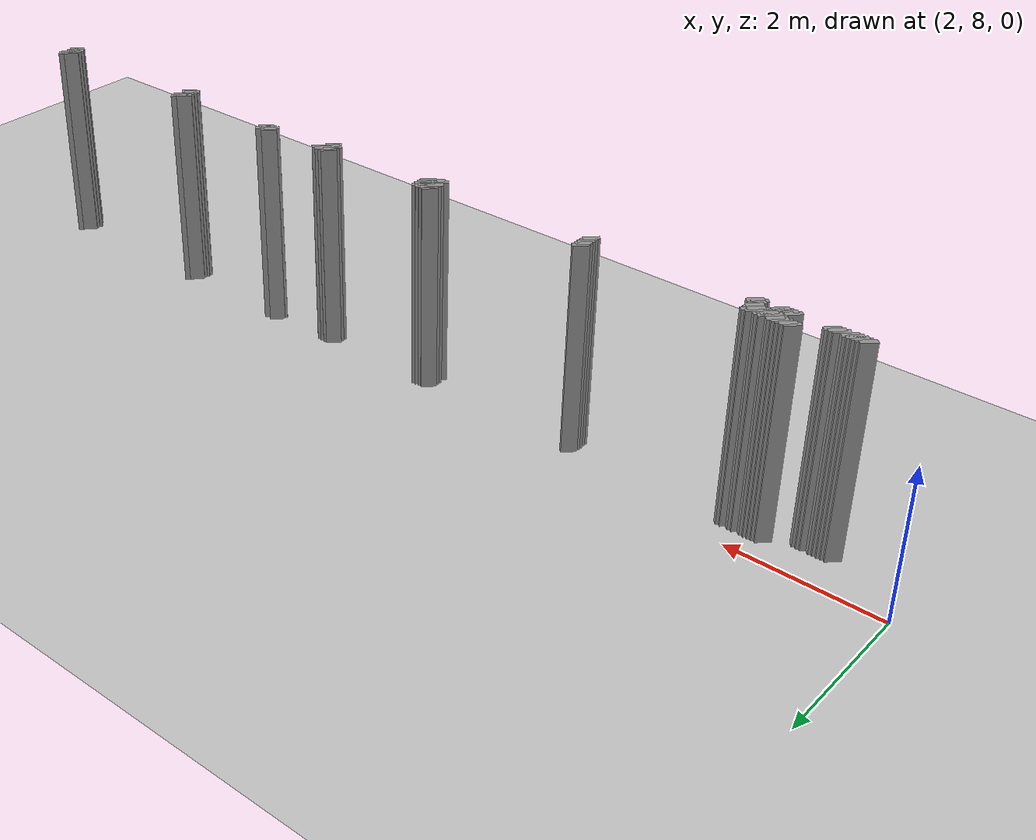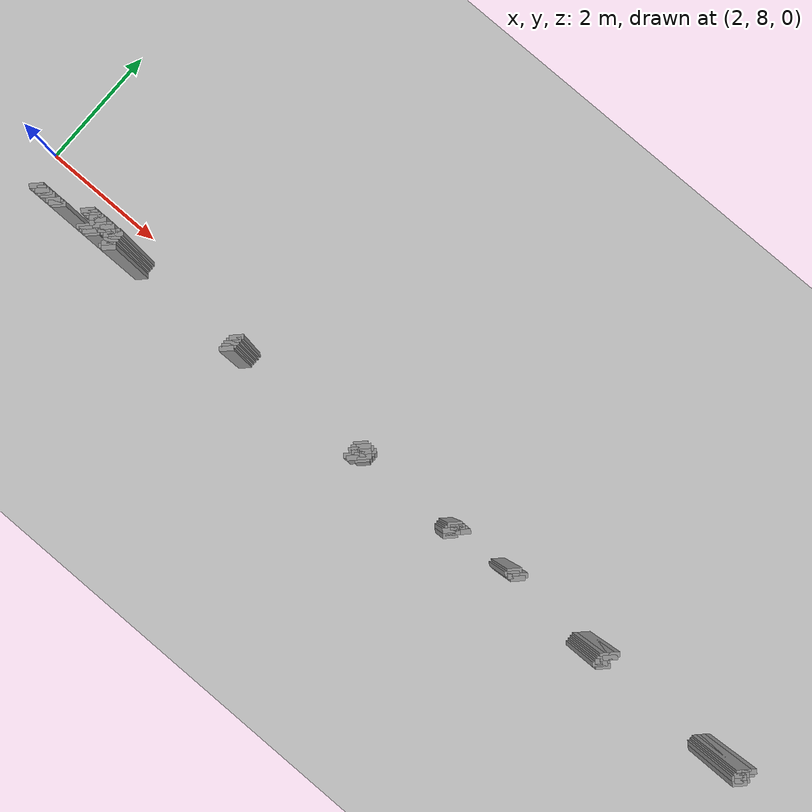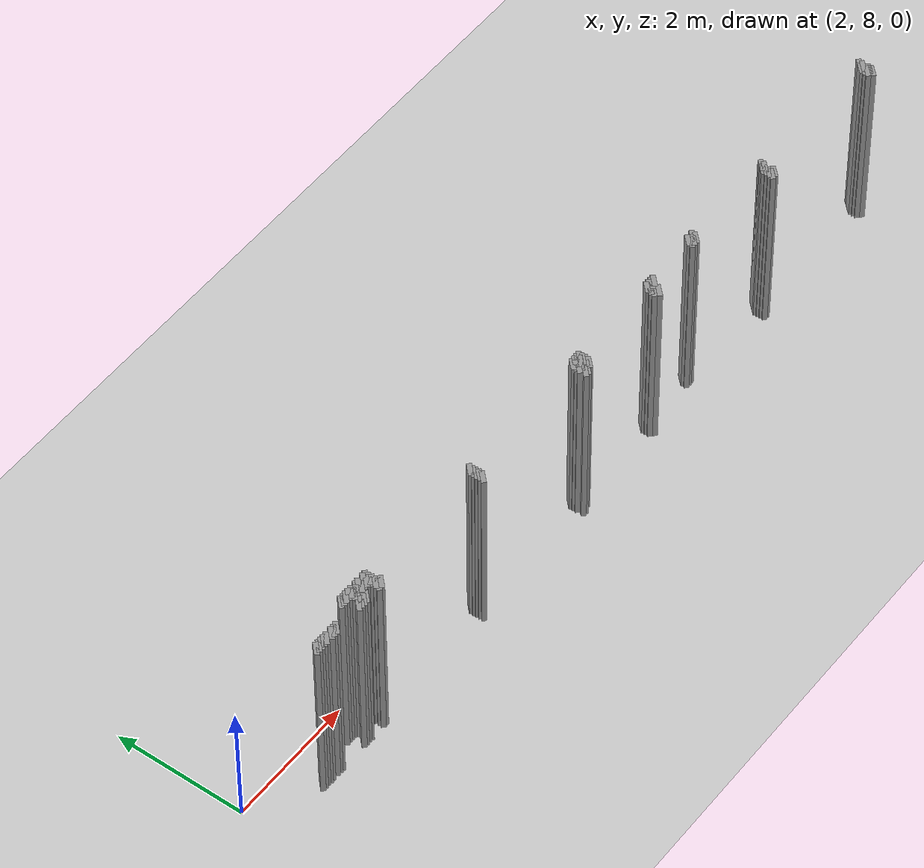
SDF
<sdf version="1.5">
 <world name="default">
  <include><uri>model://ground_plane</uri></include>
  <include><uri>model://sun</uri></include>
  <model name="grey_wall_1400">
   <static>1</static>
   <link name="link">
    <pose>11.2 7.7  1.4 0 0 -0.785398163397</pose>
    <collision name="collision"><geometry><box><size>0.0707106781187 .2  2.8</size></box></geometry></collision>
    <visual name="visual">
     <cast_shadows>0</cast_shadows>
     <geometry><box><size>0.0707106781187 .2  2.8</size></box></geometry>
     <material>
      <script>
       <uri>model://grey_wall/materials/scripts</uri>
       <uri>model://grey_wall/materials/textures</uri>
       <name>vrc/grey_wall</name>
      </script>
     </material>
    </visual>
   </link>
  </model>
  <model name="grey_wall_1401">
   <static>1</static>
   <link name="link">
    <pose>11.3 7.7  1.4 0 0 -0.785398163397</pose>
    <collision name="collision"><geometry><box><size>0.0707106781187 .2  2.8</size></box></geometry></collision>
    <visual name="visual">
     <cast_shadows>0</cast_shadows>
     <geometry><box><size>0.0707106781187 .2  2.8</size></box></geometry>
     <material>
      <script>
       <uri>model://grey_wall/materials/scripts</uri>
       <uri>model://grey_wall/materials/textures</uri>
       <name>vrc/grey_wall</name>
      </script>
     </material>
    </visual>
   </link>
  </model>
  <model name="grey_wall_1402">
   <static>1</static>
   <link name="link">
    <pose>12.9 7.7  1.4 0 0 -0.785398163397</pose>
    <collision name="collision"><geometry><box><size>0.0707106781187 .2  2.8</size></box></geometry></collision>
    <visual name="visual">
     <cast_shadows>0</cast_shadows>
     <geometry><box><size>0.0707106781187 .2  2.8</size></box></geometry>
     <material>
      <script>
       <uri>model://grey_wall/materials/scripts</uri>
       <uri>model://grey_wall/materials/textures</uri>
       <name>vrc/grey_wall</name>
      </script>
     </material>
    </visual>
   </link>
  </model>
  <model name="grey_wall_1403">
   <static>1</static>
   <link name="link">
    <pose>15.25 7.7  1.4 0 0 -0.785398163397</pose>
    <collision name="collision"><geometry><box><size>0.0707106781187 .2  2.8</size></box></geometry></collision>
    <visual name="visual">
     <cast_shadows>0</cast_shadows>
     <geometry><box><size>0.0707106781187 .2  2.8</size></box></geometry>
     <material>
      <script>
       <uri>model://grey_wall/materials/scripts</uri>
       <uri>model://grey_wall/materials/textures</uri>
       <name>vrc/grey_wall</name>
      </script>
     </material>
    </visual>
   </link>
  </model>
  <model name="grey_wall_1404">
   <static>1</static>
   <link name="link">
    <pose>3.7 7.65  1.4 0 0 -0.785398163397</pose>
    <collision name="collision"><geometry><box><size>0.0707106781187 .2  2.8</size></box></geometry></collision>
    <visual name="visual">
     <cast_shadows>0</cast_shadows>
     <geometry><box><size>0.0707106781187 .2  2.8</size></box></geometry>
     <material>
      <script>
       <uri>model://grey_wall/materials/scripts</uri>
       <uri>model://grey_wall/materials/textures</uri>
       <name>vrc/grey_wall</name>
      </script>
     </material>
    </visual>
   </link>
  </model>
  <model name="grey_wall_1405">
   <static>1</static>
   <link name="link">
    <pose>3.75 7.65  1.4 0 0 -0.785398163397</pose>
    <collision name="collision"><geometry><box><size>0.0707106781187 .2  2.8</size></box></geometry></collision>
    <visual name="visual">
     <cast_shadows>0</cast_shadows>
     <geometry><box><size>0.0707106781187 .2  2.8</size></box></geometry>
     <material>
      <script>
       <uri>model://grey_wall/materials/scripts</uri>
       <uri>model://grey_wall/materials/textures</uri>
       <name>vrc/grey_wall</name>
      </script>
     </material>
    </visual>
   </link>
  </model>
  <model name="grey_wall_1406">
   <static>1</static>
   <link name="link">
    <pose>3.8 7.65  1.4 0 0 -0.785398163397</pose>
    <collision name="collision"><geometry><box><size>0.0707106781187 .2  2.8</size></box></geometry></collision>
    <visual name="visual">
     <cast_shadows>0</cast_shadows>
     <geometry><box><size>0.0707106781187 .2  2.8</size></box></geometry>
     <material>
      <script>
       <uri>model://grey_wall/materials/scripts</uri>
       <uri>model://grey_wall/materials/textures</uri>
       <name>vrc/grey_wall</name>
      </script>
     </material>
    </visual>
   </link>
  </model>
  <model name="grey_wall_1407">
   <static>1</static>
   <link name="link">
    <pose>3.85 7.65  1.4 0 0 -0.785398163397</pose>
    <collision name="collision"><geometry><box><size>0.0707106781187 .2  2.8</size></box></geometry></collision>
    <visual name="visual">
     <cast_shadows>0</cast_shadows>
     <geometry><box><size>0.0707106781187 .2  2.8</size></box></geometry>
     <material>
      <script>
       <uri>model://grey_wall/materials/scripts</uri>
       <uri>model://grey_wall/materials/textures</uri>
       <name>vrc/grey_wall</name>
      </script>
     </material>
    </visual>
   </link>
  </model>
  <model name="grey_wall_1408">
   <static>1</static>
   <link name="link">
    <pose>3.9 7.65  1.4 0 0 -0.785398163397</pose>
    <collision name="collision"><geometry><box><size>0.0707106781187 .2  2.8</size></box></geometry></collision>
    <visual name="visual">
     <cast_shadows>0</cast_shadows>
     <geometry><box><size>0.0707106781187 .2  2.8</size></box></geometry>
     <material>
      <script>
       <uri>model://grey_wall/materials/scripts</uri>
       <uri>model://grey_wall/materials/textures</uri>
       <name>vrc/grey_wall</name>
      </script>
     </material>
    </visual>
   </link>
  </model>
  <model name="grey_wall_1409">
   <static>1</static>
   <link name="link">
    <pose>4.0 7.65  1.4 0 0 -0.785398163397</pose>
    <collision name="collision"><geometry><box><size>0.0707106781187 .2  2.8</size></box></geometry></collision>
    <visual name="visual">
     <cast_shadows>0</cast_shadows>
     <geometry><box><size>0.0707106781187 .2  2.8</size></box></geometry>
     <material>
      <script>
       <uri>model://grey_wall/materials/scripts</uri>
       <uri>model://grey_wall/materials/textures</uri>
       <name>vrc/grey_wall</name>
      </script>
     </material>
    </visual>
   </link>
  </model>
  <model name="grey_wall_1410">
   <static>1</static>
   <link name="link">
    <pose>4.05 7.65  1.4 0 0 -0.785398163397</pose>
    <collision name="collision"><geometry><box><size>0.0707106781187 .2  2.8</size></box></geometry></collision>
    <visual name="visual">
     <cast_shadows>0</cast_shadows>
     <geometry><box><size>0.0707106781187 .2  2.8</size></box></geometry>
     <material>
      <script>
       <uri>model://grey_wall/materials/scripts</uri>
       <uri>model://grey_wall/materials/textures</uri>
       <name>vrc/grey_wall</name>
      </script>
     </material>
    </visual>
   </link>
  </model>
  <model name="grey_wall_1411">
   <static>1</static>
   <link name="link">
    <pose>4.15 7.65  1.4 0 0 -0.785398163397</pose>
    <collision name="collision"><geometry><box><size>0.0707106781187 .2  2.8</size></box></geometry></collision>
    <visual name="visual">
     <cast_shadows>0</cast_shadows>
     <geometry><box><size>0.0707106781187 .2  2.8</size></box></geometry>
     <material>
      <script>
       <uri>model://grey_wall/materials/scripts</uri>
       <uri>model://grey_wall/materials/textures</uri>
       <name>vrc/grey_wall</name>
      </script>
     </material>
    </visual>
   </link>
  </model>
  <model name="grey_wall_1412">
   <static>1</static>
   <link name="link">
    <pose>4.2 7.65  1.4 0 0 -0.785398163397</pose>
    <collision name="collision"><geometry><box><size>0.0707106781187 .2  2.8</size></box></geometry></collision>
    <visual name="visual">
     <cast_shadows>0</cast_shadows>
     <geometry><box><size>0.0707106781187 .2  2.8</size></box></geometry>
     <material>
      <script>
       <uri>model://grey_wall/materials/scripts</uri>
       <uri>model://grey_wall/materials/textures</uri>
       <name>vrc/grey_wall</name>
      </script>
     </material>
    </visual>
   </link>
  </model>
  <model name="grey_wall_1413">
   <static>1</static>
   <link name="link">
    <pose>6.35 7.65  1.4 0 0 -0.785398163397</pose>
    <collision name="collision"><geometry><box><size>0.0707106781187 .2  2.8</size></box></geometry></collision>
    <visual name="visual">
     <cast_shadows>0</cast_shadows>
     <geometry><box><size>0.0707106781187 .2  2.8</size></box></geometry>
     <material>
      <script>
       <uri>model://grey_wall/materials/scripts</uri>
       <uri>model://grey_wall/materials/textures</uri>
       <name>vrc/grey_wall</name>
      </script>
     </material>
    </visual>
   </link>
  </model>
  <model name="grey_wall_1414">
   <static>1</static>
   <link name="link">
    <pose>8.55 7.65  1.4 0 0 -0.785398163397</pose>
    <collision name="collision"><geometry><box><size>0.0707106781187 .2  2.8</size></box></geometry></collision>
    <visual name="visual">
     <cast_shadows>0</cast_shadows>
     <geometry><box><size>0.0707106781187 .2  2.8</size></box></geometry>
     <material>
      <script>
       <uri>model://grey_wall/materials/scripts</uri>
       <uri>model://grey_wall/materials/textures</uri>
       <name>vrc/grey_wall</name>
      </script>
     </material>
    </visual>
   </link>
  </model>
  <model name="grey_wall_1415">
   <static>1</static>
   <link name="link">
    <pose>8.6 7.65  1.4 0 0 -0.785398163397</pose>
    <collision name="collision"><geometry><box><size>0.0707106781187 .2  2.8</size></box></geometry></collision>
    <visual name="visual">
     <cast_shadows>0</cast_shadows>
     <geometry><box><size>0.0707106781187 .2  2.8</size></box></geometry>
     <material>
      <script>
       <uri>model://grey_wall/materials/scripts</uri>
       <uri>model://grey_wall/materials/textures</uri>
       <name>vrc/grey_wall</name>
      </script>
     </material>
    </visual>
   </link>
  </model>
  <model name="grey_wall_1416">
   <static>1</static>
   <link name="link">
    <pose>8.65 7.65  1.4 0 0 -0.785398163397</pose>
    <collision name="collision"><geometry><box><size>0.0707106781187 .2  2.8</size></box></geometry></collision>
    <visual name="visual">
     <cast_shadows>0</cast_shadows>
     <geometry><box><size>0.0707106781187 .2  2.8</size></box></geometry>
     <material>
      <script>
       <uri>model://grey_wall/materials/scripts</uri>
       <uri>model://grey_wall/materials/textures</uri>
       <name>vrc/grey_wall</name>
      </script>
     </material>
    </visual>
   </link>
  </model>
  <model name="grey_wall_1417">
   <static>1</static>
   <link name="link">
    <pose>8.7 7.65  1.4 0 0 -0.785398163397</pose>
    <collision name="collision"><geometry><box><size>0.0707106781187 .2  2.8</size></box></geometry></collision>
    <visual name="visual">
     <cast_shadows>0</cast_shadows>
     <geometry><box><size>0.0707106781187 .2  2.8</size></box></geometry>
     <material>
      <script>
       <uri>model://grey_wall/materials/scripts</uri>
       <uri>model://grey_wall/materials/textures</uri>
       <name>vrc/grey_wall</name>
      </script>
     </material>
    </visual>
   </link>
  </model>
  <model name="grey_wall_1418">
   <static>1</static>
   <link name="link">
    <pose>10.2 7.65  1.4 0 0 -0.785398163397</pose>
    <collision name="collision"><geometry><box><size>0.0707106781187 .2  2.8</size></box></geometry></collision>
    <visual name="visual">
     <cast_shadows>0</cast_shadows>
     <geometry><box><size>0.0707106781187 .2  2.8</size></box></geometry>
     <material>
      <script>
       <uri>model://grey_wall/materials/scripts</uri>
       <uri>model://grey_wall/materials/textures</uri>
       <name>vrc/grey_wall</name>
      </script>
     </material>
    </visual>
   </link>
  </model>
  <model name="grey_wall_1419">
   <static>1</static>
   <link name="link">
    <pose>10.25 7.65  1.4 0 0 -0.785398163397</pose>
    <collision name="collision"><geometry><box><size>0.0707106781187 .2  2.8</size></box></geometry></collision>
    <visual name="visual">
     <cast_shadows>0</cast_shadows>
     <geometry><box><size>0.0707106781187 .2  2.8</size></box></geometry>
     <material>
      <script>
       <uri>model://grey_wall/materials/scripts</uri>
       <uri>model://grey_wall/materials/textures</uri>
       <name>vrc/grey_wall</name>
      </script>
     </material>
    </visual>
   </link>
  </model>
  <model name="grey_wall_1420">
   <static>1</static>
   <link name="link">
    <pose>10.3 7.65  1.4 0 0 -0.785398163397</pose>
    <collision name="collision"><geometry><box><size>0.0707106781187 .2  2.8</size></box></geometry></collision>
    <visual name="visual">
     <cast_shadows>0</cast_shadows>
     <geometry><box><size>0.0707106781187 .2  2.8</size></box></geometry>
     <material>
      <script>
       <uri>model://grey_wall/materials/scripts</uri>
       <uri>model://grey_wall/materials/textures</uri>
       <name>vrc/grey_wall</name>
      </script>
     </material>
    </visual>
   </link>
  </model>
  <model name="grey_wall_1421">
   <static>1</static>
   <link name="link">
    <pose>10.35 7.65  1.4 0 0 -0.785398163397</pose>
    <collision name="collision"><geometry><box><size>0.0707106781187 .2  2.8</size></box></geometry></collision>
    <visual name="visual">
     <cast_shadows>0</cast_shadows>
     <geometry><box><size>0.0707106781187 .2  2.8</size></box></geometry>
     <material>
      <script>
       <uri>model://grey_wall/materials/scripts</uri>
       <uri>model://grey_wall/materials/textures</uri>
       <name>vrc/grey_wall</name>
      </script>
     </material>
    </visual>
   </link>
  </model>
  <model name="grey_wall_1422">
   <static>1</static>
   <link name="link">
    <pose>11.2 7.65  1.4 0 0 -0.785398163397</pose>
    <collision name="collision"><geometry><box><size>0.0707106781187 .2  2.8</size></box></geometry></collision>
    <visual name="visual">
     <cast_shadows>0</cast_shadows>
     <geometry><box><size>0.0707106781187 .2  2.8</size></box></geometry>
     <material>
      <script>
       <uri>model://grey_wall/materials/scripts</uri>
       <uri>model://grey_wall/materials/textures</uri>
       <name>vrc/grey_wall</name>
      </script>
     </material>
    </visual>
   </link>
  </model>
  <model name="grey_wall_1423">
   <static>1</static>
   <link name="link">
    <pose>11.25 7.65  1.4 0 0 -0.785398163397</pose>
    <collision name="collision"><geometry><box><size>0.0707106781187 .2  2.8</size></box></geometry></collision>
    <visual name="visual">
     <cast_shadows>0</cast_shadows>
     <geometry><box><size>0.0707106781187 .2  2.8</size></box></geometry>
     <material>
      <script>
       <uri>model://grey_wall/materials/scripts</uri>
       <uri>model://grey_wall/materials/textures</uri>
       <name>vrc/grey_wall</name>
      </script>
     </material>
    </visual>
   </link>
  </model>
  <model name="grey_wall_1424">
   <static>1</static>
   <link name="link">
    <pose>11.3 7.65  1.4 0 0 -0.785398163397</pose>
    <collision name="collision"><geometry><box><size>0.0707106781187 .2  2.8</size></box></geometry></collision>
    <visual name="visual">
     <cast_shadows>0</cast_shadows>
     <geometry><box><size>0.0707106781187 .2  2.8</size></box></geometry>
     <material>
      <script>
       <uri>model://grey_wall/materials/scripts</uri>
       <uri>model://grey_wall/materials/textures</uri>
       <name>vrc/grey_wall</name>
      </script>
     </material>
    </visual>
   </link>
  </model>
  <model name="grey_wall_1425">
   <static>1</static>
   <link name="link">
    <pose>12.85 7.65  1.4 0 0 -0.785398163397</pose>
    <collision name="collision"><geometry><box><size>0.0707106781187 .2  2.8</size></box></geometry></collision>
    <visual name="visual">
     <cast_shadows>0</cast_shadows>
     <geometry><box><size>0.0707106781187 .2  2.8</size></box></geometry>
     <material>
      <script>
       <uri>model://grey_wall/materials/scripts</uri>
       <uri>model://grey_wall/materials/textures</uri>
       <name>vrc/grey_wall</name>
      </script>
     </material>
    </visual>
   </link>
  </model>
  <model name="grey_wall_1426">
   <static>1</static>
   <link name="link">
    <pose>12.9 7.65  1.4 0 0 -0.785398163397</pose>
    <collision name="collision"><geometry><box><size>0.0707106781187 .2  2.8</size></box></geometry></collision>
    <visual name="visual">
     <cast_shadows>0</cast_shadows>
     <geometry><box><size>0.0707106781187 .2  2.8</size></box></geometry>
     <material>
      <script>
       <uri>model://grey_wall/materials/scripts</uri>
       <uri>model://grey_wall/materials/textures</uri>
       <name>vrc/grey_wall</name>
      </script>
     </material>
    </visual>
   </link>
  </model>
  <model name="grey_wall_1427">
   <static>1</static>
   <link name="link">
    <pose>15.2 7.65  1.4 0 0 -0.785398163397</pose>
    <collision name="collision"><geometry><box><size>0.0707106781187 .2  2.8</size></box></geometry></collision>
    <visual name="visual">
     <cast_shadows>0</cast_shadows>
     <geometry><box><size>0.0707106781187 .2  2.8</size></box></geometry>
     <material>
      <script>
       <uri>model://grey_wall/materials/scripts</uri>
       <uri>model://grey_wall/materials/textures</uri>
       <name>vrc/grey_wall</name>
      </script>
     </material>
    </visual>
   </link>
  </model>
  <model name="grey_wall_1428">
   <static>1</static>
   <link name="link">
    <pose>15.25 7.65  1.4 0 0 -0.785398163397</pose>
    <collision name="collision"><geometry><box><size>0.0707106781187 .2  2.8</size></box></geometry></collision>
    <visual name="visual">
     <cast_shadows>0</cast_shadows>
     <geometry><box><size>0.0707106781187 .2  2.8</size></box></geometry>
     <material>
      <script>
       <uri>model://grey_wall/materials/scripts</uri>
       <uri>model://grey_wall/materials/textures</uri>
       <name>vrc/grey_wall</name>
      </script>
     </material>
    </visual>
   </link>
  </model>
  <model name="grey_wall_1429">
   <static>1</static>
   <link name="link">
    <pose>3.9 7.6  1.4 0 0 -0.785398163397</pose>
    <collision name="collision"><geometry><box><size>0.0707106781187 .2  2.8</size></box></geometry></collision>
    <visual name="visual">
     <cast_shadows>0</cast_shadows>
     <geometry><box><size>0.0707106781187 .2  2.8</size></box></geometry>
     <material>
      <script>
       <uri>model://grey_wall/materials/scripts</uri>
       <uri>model://grey_wall/materials/textures</uri>
       <name>vrc/grey_wall</name>
      </script>
     </material>
    </visual>
   </link>
  </model>
  <model name="grey_wall_1430">
   <static>1</static>
   <link name="link">
    <pose>3.95 7.6  1.4 0 0 -0.785398163397</pose>
    <collision name="collision"><geometry><box><size>0.0707106781187 .2  2.8</size></box></geometry></collision>
    <visual name="visual">
     <cast_shadows>0</cast_shadows>
     <geometry><box><size>0.0707106781187 .2  2.8</size></box></geometry>
     <material>
      <script>
       <uri>model://grey_wall/materials/scripts</uri>
       <uri>model://grey_wall/materials/textures</uri>
       <name>vrc/grey_wall</name>
      </script>
     </material>
    </visual>
   </link>
  </model>
  <model name="grey_wall_1431">
   <static>1</static>
   <link name="link">
    <pose>4.0 7.6  1.4 0 0 -0.785398163397</pose>
    <collision name="collision"><geometry><box><size>0.0707106781187 .2  2.8</size></box></geometry></collision>
    <visual name="visual">
     <cast_shadows>0</cast_shadows>
     <geometry><box><size>0.0707106781187 .2  2.8</size></box></geometry>
     <material>
      <script>
       <uri>model://grey_wall/materials/scripts</uri>
       <uri>model://grey_wall/materials/textures</uri>
       <name>vrc/grey_wall</name>
      </script>
     </material>
    </visual>
   </link>
  </model>
  <model name="grey_wall_1432">
   <static>1</static>
   <link name="link">
    <pose>4.05 7.6  1.4 0 0 -0.785398163397</pose>
    <collision name="collision"><geometry><box><size>0.0707106781187 .2  2.8</size></box></geometry></collision>
    <visual name="visual">
     <cast_shadows>0</cast_shadows>
     <geometry><box><size>0.0707106781187 .2  2.8</size></box></geometry>
     <material>
      <script>
       <uri>model://grey_wall/materials/scripts</uri>
       <uri>model://grey_wall/materials/textures</uri>
       <name>vrc/grey_wall</name>
      </script>
     </material>
    </visual>
   </link>
  </model>
  <model name="grey_wall_1433">
   <static>1</static>
   <link name="link">
    <pose>4.1 7.6  1.4 0 0 -0.785398163397</pose>
    <collision name="collision"><geometry><box><size>0.0707106781187 .2  2.8</size></box></geometry></collision>
    <visual name="visual">
     <cast_shadows>0</cast_shadows>
     <geometry><box><size>0.0707106781187 .2  2.8</size></box></geometry>
     <material>
      <script>
       <uri>model://grey_wall/materials/scripts</uri>
       <uri>model://grey_wall/materials/textures</uri>
       <name>vrc/grey_wall</name>
      </script>
     </material>
    </visual>
   </link>
  </model>
  <model name="grey_wall_1434">
   <static>1</static>
   <link name="link">
    <pose>4.15 7.6  1.4 0 0 -0.785398163397</pose>
    <collision name="collision"><geometry><box><size>0.0707106781187 .2  2.8</size></box></geometry></collision>
    <visual name="visual">
     <cast_shadows>0</cast_shadows>
     <geometry><box><size>0.0707106781187 .2  2.8</size></box></geometry>
     <material>
      <script>
       <uri>model://grey_wall/materials/scripts</uri>
       <uri>model://grey_wall/materials/textures</uri>
       <name>vrc/grey_wall</name>
      </script>
     </material>
    </visual>
   </link>
  </model>
  <model name="grey_wall_1435">
   <static>1</static>
   <link name="link">
    <pose>4.2 7.6  1.4 0 0 -0.785398163397</pose>
    <collision name="collision"><geometry><box><size>0.0707106781187 .2  2.8</size></box></geometry></collision>
    <visual name="visual">
     <cast_shadows>0</cast_shadows>
     <geometry><box><size>0.0707106781187 .2  2.8</size></box></geometry>
     <material>
      <script>
       <uri>model://grey_wall/materials/scripts</uri>
       <uri>model://grey_wall/materials/textures</uri>
       <name>vrc/grey_wall</name>
      </script>
     </material>
    </visual>
   </link>
  </model>
  <model name="grey_wall_1436">
   <static>1</static>
   <link name="link">
    <pose>6.35 7.6  1.4 0 0 -0.785398163397</pose>
    <collision name="collision"><geometry><box><size>0.0707106781187 .2  2.8</size></box></geometry></collision>
    <visual name="visual">
     <cast_shadows>0</cast_shadows>
     <geometry><box><size>0.0707106781187 .2  2.8</size></box></geometry>
     <material>
      <script>
       <uri>model://grey_wall/materials/scripts</uri>
       <uri>model://grey_wall/materials/textures</uri>
       <name>vrc/grey_wall</name>
      </script>
     </material>
    </visual>
   </link>
  </model>
  <model name="grey_wall_1437">
   <static>1</static>
   <link name="link">
    <pose>8.55 7.6  1.4 0 0 -0.785398163397</pose>
    <collision name="collision"><geometry><box><size>0.0707106781187 .2  2.8</size></box></geometry></collision>
    <visual name="visual">
     <cast_shadows>0</cast_shadows>
     <geometry><box><size>0.0707106781187 .2  2.8</size></box></geometry>
     <material>
      <script>
       <uri>model://grey_wall/materials/scripts</uri>
       <uri>model://grey_wall/materials/textures</uri>
       <name>vrc/grey_wall</name>
      </script>
     </material>
    </visual>
   </link>
  </model>
  <model name="grey_wall_1438">
   <static>1</static>
   <link name="link">
    <pose>8.65 7.6  1.4 0 0 -0.785398163397</pose>
    <collision name="collision"><geometry><box><size>0.0707106781187 .2  2.8</size></box></geometry></collision>
    <visual name="visual">
     <cast_shadows>0</cast_shadows>
     <geometry><box><size>0.0707106781187 .2  2.8</size></box></geometry>
     <material>
      <script>
       <uri>model://grey_wall/materials/scripts</uri>
       <uri>model://grey_wall/materials/textures</uri>
       <name>vrc/grey_wall</name>
      </script>
     </material>
    </visual>
   </link>
  </model>
  <model name="grey_wall_1439">
   <static>1</static>
   <link name="link">
    <pose>8.7 7.6  1.4 0 0 -0.785398163397</pose>
    <collision name="collision"><geometry><box><size>0.0707106781187 .2  2.8</size></box></geometry></collision>
    <visual name="visual">
     <cast_shadows>0</cast_shadows>
     <geometry><box><size>0.0707106781187 .2  2.8</size></box></geometry>
     <material>
      <script>
       <uri>model://grey_wall/materials/scripts</uri>
       <uri>model://grey_wall/materials/textures</uri>
       <name>vrc/grey_wall</name>
      </script>
     </material>
    </visual>
   </link>
  </model>
  <model name="grey_wall_1440">
   <static>1</static>
   <link name="link">
    <pose>10.2 7.6  1.4 0 0 -0.785398163397</pose>
    <collision name="collision"><geometry><box><size>0.0707106781187 .2  2.8</size></box></geometry></collision>
    <visual name="visual">
     <cast_shadows>0</cast_shadows>
     <geometry><box><size>0.0707106781187 .2  2.8</size></box></geometry>
     <material>
      <script>
       <uri>model://grey_wall/materials/scripts</uri>
       <uri>model://grey_wall/materials/textures</uri>
       <name>vrc/grey_wall</name>
      </script>
     </material>
    </visual>
   </link>
  </model>
  <model name="grey_wall_1441">
   <static>1</static>
   <link name="link">
    <pose>12.85 7.6  1.4 0 0 -0.785398163397</pose>
    <collision name="collision"><geometry><box><size>0.0707106781187 .2  2.8</size></box></geometry></collision>
    <visual name="visual">
     <cast_shadows>0</cast_shadows>
     <geometry><box><size>0.0707106781187 .2  2.8</size></box></geometry>
     <material>
      <script>
       <uri>model://grey_wall/materials/scripts</uri>
       <uri>model://grey_wall/materials/textures</uri>
       <name>vrc/grey_wall</name>
      </script>
     </material>
    </visual>
   </link>
  </model>
  <model name="grey_wall_1442">
   <static>1</static>
   <link name="link">
    <pose>15.2 7.6  1.4 0 0 -0.785398163397</pose>
    <collision name="collision"><geometry><box><size>0.0707106781187 .2  2.8</size></box></geometry></collision>
    <visual name="visual">
     <cast_shadows>0</cast_shadows>
     <geometry><box><size>0.0707106781187 .2  2.8</size></box></geometry>
     <material>
      <script>
       <uri>model://grey_wall/materials/scripts</uri>
       <uri>model://grey_wall/materials/textures</uri>
       <name>vrc/grey_wall</name>
      </script>
     </material>
    </visual>
   </link>
  </model>
  <model name="grey_wall_1443">
   <static>1</static>
   <link name="link">
    <pose>4.2 7.55  1.4 0 0 -0.785398163397</pose>
    <collision name="collision"><geometry><box><size>0.0707106781187 .2  2.8</size></box></geometry></collision>
    <visual name="visual">
     <cast_shadows>0</cast_shadows>
     <geometry><box><size>0.0707106781187 .2  2.8</size></box></geometry>
     <material>
      <script>
       <uri>model://grey_wall/materials/scripts</uri>
       <uri>model://grey_wall/materials/textures</uri>
       <name>vrc/grey_wall</name>
      </script>
     </material>
    </visual>
   </link>
  </model>
  <model name="grey_wall_1444">
   <static>1</static>
   <link name="link">
    <pose>6.35 7.55  1.4 0 0 -0.785398163397</pose>
    <collision name="collision"><geometry><box><size>0.0707106781187 .2  2.8</size></box></geometry></collision>
    <visual name="visual">
     <cast_shadows>0</cast_shadows>
     <geometry><box><size>0.0707106781187 .2  2.8</size></box></geometry>
     <material>
      <script>
       <uri>model://grey_wall/materials/scripts</uri>
       <uri>model://grey_wall/materials/textures</uri>
       <name>vrc/grey_wall</name>
      </script>
     </material>
    </visual>
   </link>
  </model>
  <model name="grey_wall_1445">
   <static>1</static>
   <link name="link">
    <pose>8.55 7.55  1.4 0 0 -0.785398163397</pose>
    <collision name="collision"><geometry><box><size>0.0707106781187 .2  2.8</size></box></geometry></collision>
    <visual name="visual">
     <cast_shadows>0</cast_shadows>
     <geometry><box><size>0.0707106781187 .2  2.8</size></box></geometry>
     <material>
      <script>
       <uri>model://grey_wall/materials/scripts</uri>
       <uri>model://grey_wall/materials/textures</uri>
       <name>vrc/grey_wall</name>
      </script>
     </material>
    </visual>
   </link>
  </model>
  <model name="grey_wall_1446">
   <static>1</static>
   <link name="link">
    <pose>8.6 7.55  1.4 0 0 -0.785398163397</pose>
    <collision name="collision"><geometry><box><size>0.0707106781187 .2  2.8</size></box></geometry></collision>
    <visual name="visual">
     <cast_shadows>0</cast_shadows>
     <geometry><box><size>0.0707106781187 .2  2.8</size></box></geometry>
     <material>
      <script>
       <uri>model://grey_wall/materials/scripts</uri>
       <uri>model://grey_wall/materials/textures</uri>
       <name>vrc/grey_wall</name>
      </script>
     </material>
    </visual>
   </link>
  </model>
  <model name="grey_wall_1447">
   <static>1</static>
   <link name="link">
    <pose>8.65 7.55  1.4 0 0 -0.785398163397</pose>
    <collision name="collision"><geometry><box><size>0.0707106781187 .2  2.8</size></box></geometry></collision>
    <visual name="visual">
     <cast_shadows>0</cast_shadows>
     <geometry><box><size>0.0707106781187 .2  2.8</size></box></geometry>
     <material>
      <script>
       <uri>model://grey_wall/materials/scripts</uri>
       <uri>model://grey_wall/materials/textures</uri>
       <name>vrc/grey_wall</name>
      </script>
     </material>
    </visual>
   </link>
  </model>
  <model name="grey_wall_1448">
   <static>1</static>
   <link name="link">
    <pose>8.7 7.55  1.4 0 0 -0.785398163397</pose>
    <collision name="collision"><geometry><box><size>0.0707106781187 .2  2.8</size></box></geometry></collision>
    <visual name="visual">
     <cast_shadows>0</cast_shadows>
     <geometry><box><size>0.0707106781187 .2  2.8</size></box></geometry>
     <material>
      <script>
       <uri>model://grey_wall/materials/scripts</uri>
       <uri>model://grey_wall/materials/textures</uri>
       <name>vrc/grey_wall</name>
      </script>
     </material>
    </visual>
   </link>
  </model>
  <model name="grey_wall_1449">
   <static>1</static>
   <link name="link">
    <pose>10.2 7.55  1.4 0 0 -0.785398163397</pose>
    <collision name="collision"><geometry><box><size>0.0707106781187 .2  2.8</size></box></geometry></collision>
    <visual name="visual">
     <cast_shadows>0</cast_shadows>
     <geometry><box><size>0.0707106781187 .2  2.8</size></box></geometry>
     <material>
      <script>
       <uri>model://grey_wall/materials/scripts</uri>
       <uri>model://grey_wall/materials/textures</uri>
       <name>vrc/grey_wall</name>
      </script>
     </material>
    </visual>
   </link>
  </model>
  <model name="grey_wall_1450">
   <static>1</static>
   <link name="link">
    <pose>10.25 7.55  1.4 0 0 -0.785398163397</pose>
    <collision name="collision"><geometry><box><size>0.0707106781187 .2  2.8</size></box></geometry></collision>
    <visual name="visual">
     <cast_shadows>0</cast_shadows>
     <geometry><box><size>0.0707106781187 .2  2.8</size></box></geometry>
     <material>
      <script>
       <uri>model://grey_wall/materials/scripts</uri>
       <uri>model://grey_wall/materials/textures</uri>
       <name>vrc/grey_wall</name>
      </script>
     </material>
    </visual>
   </link>
  </model>
  <model name="grey_wall_1451">
   <static>1</static>
   <link name="link">
    <pose>12.85 7.55  1.4 0 0 -0.785398163397</pose>
    <collision name="collision"><geometry><box><size>0.0707106781187 .2  2.8</size></box></geometry></collision>
    <visual name="visual">
     <cast_shadows>0</cast_shadows>
     <geometry><box><size>0.0707106781187 .2  2.8</size></box></geometry>
     <material>
      <script>
       <uri>model://grey_wall/materials/scripts</uri>
       <uri>model://grey_wall/materials/textures</uri>
       <name>vrc/grey_wall</name>
      </script>
     </material>
    </visual>
   </link>
  </model>
  <model name="grey_wall_1452">
   <static>1</static>
   <link name="link">
    <pose>15.2 7.55  1.4 0 0 -0.785398163397</pose>
    <collision name="collision"><geometry><box><size>0.0707106781187 .2  2.8</size></box></geometry></collision>
    <visual name="visual">
     <cast_shadows>0</cast_shadows>
     <geometry><box><size>0.0707106781187 .2  2.8</size></box></geometry>
     <material>
      <script>
       <uri>model://grey_wall/materials/scripts</uri>
       <uri>model://grey_wall/materials/textures</uri>
       <name>vrc/grey_wall</name>
      </script>
     </material>
    </visual>
   </link>
  </model>
  <model name="grey_wall_1453">
   <static>1</static>
   <link name="link">
    <pose>15.25 7.55  1.4 0 0 -0.785398163397</pose>
    <collision name="collision"><geometry><box><size>0.0707106781187 .2  2.8</size></box></geometry></collision>
    <visual name="visual">
     <cast_shadows>0</cast_shadows>
     <geometry><box><size>0.0707106781187 .2  2.8</size></box></geometry>
     <material>
      <script>
       <uri>model://grey_wall/materials/scripts</uri>
       <uri>model://grey_wall/materials/textures</uri>
       <name>vrc/grey_wall</name>
      </script>
     </material>
    </visual>
   </link>
  </model>
  <model name="grey_wall_1454">
   <static>1</static>
   <link name="link">
    <pose>4.2 7.5  1.4 0 0 -0.785398163397</pose>
    <collision name="collision"><geometry><box><size>0.0707106781187 .2  2.8</size></box></geometry></collision>
    <visual name="visual">
     <cast_shadows>0</cast_shadows>
     <geometry><box><size>0.0707106781187 .2  2.8</size></box></geometry>
     <material>
      <script>
       <uri>model://grey_wall/materials/scripts</uri>
       <uri>model://grey_wall/materials/textures</uri>
       <name>vrc/grey_wall</name>
      </script>
     </material>
    </visual>
   </link>
  </model>
  <model name="grey_wall_1455">
   <static>1</static>
   <link name="link">
    <pose>6.35 7.5  1.4 0 0 -0.785398163397</pose>
    <collision name="collision"><geometry><box><size>0.0707106781187 .2  2.8</size></box></geometry></collision>
    <visual name="visual">
     <cast_shadows>0</cast_shadows>
     <geometry><box><size>0.0707106781187 .2  2.8</size></box></geometry>
     <material>
      <script>
       <uri>model://grey_wall/materials/scripts</uri>
       <uri>model://grey_wall/materials/textures</uri>
       <name>vrc/grey_wall</name>
      </script>
     </material>
    </visual>
   </link>
  </model>
  <model name="grey_wall_1456">
   <static>1</static>
   <link name="link">
    <pose>8.7 7.5  1.4 0 0 -0.785398163397</pose>
    <collision name="collision"><geometry><box><size>0.0707106781187 .2  2.8</size></box></geometry></collision>
    <visual name="visual">
     <cast_shadows>0</cast_shadows>
     <geometry><box><size>0.0707106781187 .2  2.8</size></box></geometry>
     <material>
      <script>
       <uri>model://grey_wall/materials/scripts</uri>
       <uri>model://grey_wall/materials/textures</uri>
       <name>vrc/grey_wall</name>
      </script>
     </material>
    </visual>
   </link>
  </model>
  <model name="grey_wall_1457">
   <static>1</static>
   <link name="link">
    <pose>10.25 7.5  1.4 0 0 -0.785398163397</pose>
    <collision name="collision"><geometry><box><size>0.0707106781187 .2  2.8</size></box></geometry></collision>
    <visual name="visual">
     <cast_shadows>0</cast_shadows>
     <geometry><box><size>0.0707106781187 .2  2.8</size></box></geometry>
     <material>
      <script>
       <uri>model://grey_wall/materials/scripts</uri>
       <uri>model://grey_wall/materials/textures</uri>
       <name>vrc/grey_wall</name>
      </script>
     </material>
    </visual>
   </link>
  </model>
  <model name="grey_wall_1458">
   <static>1</static>
   <link name="link">
    <pose>12.85 7.5  1.4 0 0 -0.785398163397</pose>
    <collision name="collision"><geometry><box><size>0.0707106781187 .2  2.8</size></box></geometry></collision>
    <visual name="visual">
     <cast_shadows>0</cast_shadows>
     <geometry><box><size>0.0707106781187 .2  2.8</size></box></geometry>
     <material>
      <script>
       <uri>model://grey_wall/materials/scripts</uri>
       <uri>model://grey_wall/materials/textures</uri>
       <name>vrc/grey_wall</name>
      </script>
     </material>
    </visual>
   </link>
  </model>
  <model name="grey_wall_1459">
   <static>1</static>
   <link name="link">
    <pose>12.9 7.5  1.4 0 0 -0.785398163397</pose>
    <collision name="collision"><geometry><box><size>0.0707106781187 .2  2.8</size></box></geometry></collision>
    <visual name="visual">
     <cast_shadows>0</cast_shadows>
     <geometry><box><size>0.0707106781187 .2  2.8</size></box></geometry>
     <material>
      <script>
       <uri>model://grey_wall/materials/scripts</uri>
       <uri>model://grey_wall/materials/textures</uri>
       <name>vrc/grey_wall</name>
      </script>
     </material>
    </visual>
   </link>
  </model>
  <model name="grey_wall_1460">
   <static>1</static>
   <link name="link">
    <pose>15.25 7.5  1.4 0 0 -0.785398163397</pose>
    <collision name="collision"><geometry><box><size>0.0707106781187 .2  2.8</size></box></geometry></collision>
    <visual name="visual">
     <cast_shadows>0</cast_shadows>
     <geometry><box><size>0.0707106781187 .2  2.8</size></box></geometry>
     <material>
      <script>
       <uri>model://grey_wall/materials/scripts</uri>
       <uri>model://grey_wall/materials/textures</uri>
       <name>vrc/grey_wall</name>
      </script>
     </material>
    </visual>
   </link>
  </model>
  <model name="grey_wall_1461">
   <static>1</static>
   <link name="link">
    <pose>2.95 7.45  1.4 0 0 -0.785398163397</pose>
    <collision name="collision"><geometry><box><size>0.0707106781187 .2  2.8</size></box></geometry></collision>
    <visual name="visual">
     <cast_shadows>0</cast_shadows>
     <geometry><box><size>0.0707106781187 .2  2.8</size></box></geometry>
     <material>
      <script>
       <uri>model://grey_wall/materials/scripts</uri>
       <uri>model://grey_wall/materials/textures</uri>
       <name>vrc/grey_wall</name>
      </script>
     </material>
    </visual>
   </link>
  </model>
  <model name="grey_wall_1462">
   <static>1</static>
   <link name="link">
    <pose>3.0 7.45  1.4 0 0 -0.785398163397</pose>
    <collision name="collision"><geometry><box><size>0.0707106781187 .2  2.8</size></box></geometry></collision>
    <visual name="visual">
     <cast_shadows>0</cast_shadows>
     <geometry><box><size>0.0707106781187 .2  2.8</size></box></geometry>
     <material>
      <script>
       <uri>model://grey_wall/materials/scripts</uri>
       <uri>model://grey_wall/materials/textures</uri>
       <name>vrc/grey_wall</name>
      </script>
     </material>
    </visual>
   </link>
  </model>
  <model name="grey_wall_1463">
   <static>1</static>
   <link name="link">
    <pose>3.05 7.45  1.4 0 0 -0.785398163397</pose>
    <collision name="collision"><geometry><box><size>0.0707106781187 .2  2.8</size></box></geometry></collision>
    <visual name="visual">
     <cast_shadows>0</cast_shadows>
     <geometry><box><size>0.0707106781187 .2  2.8</size></box></geometry>
     <material>
      <script>
       <uri>model://grey_wall/materials/scripts</uri>
       <uri>model://grey_wall/materials/textures</uri>
       <name>vrc/grey_wall</name>
      </script>
     </material>
    </visual>
   </link>
  </model>
  <model name="grey_wall_1464">
   <static>1</static>
   <link name="link">
    <pose>3.1 7.45  1.4 0 0 -0.785398163397</pose>
    <collision name="collision"><geometry><box><size>0.0707106781187 .2  2.8</size></box></geometry></collision>
    <visual name="visual">
     <cast_shadows>0</cast_shadows>
     <geometry><box><size>0.0707106781187 .2  2.8</size></box></geometry>
     <material>
      <script>
       <uri>model://grey_wall/materials/scripts</uri>
       <uri>model://grey_wall/materials/textures</uri>
       <name>vrc/grey_wall</name>
      </script>
     </material>
    </visual>
   </link>
  </model>
  <model name="grey_wall_1465">
   <static>1</static>
   <link name="link">
    <pose>3.15 7.45  1.4 0 0 -0.785398163397</pose>
    <collision name="collision"><geometry><box><size>0.0707106781187 .2  2.8</size></box></geometry></collision>
    <visual name="visual">
     <cast_shadows>0</cast_shadows>
     <geometry><box><size>0.0707106781187 .2  2.8</size></box></geometry>
     <material>
      <script>
       <uri>model://grey_wall/materials/scripts</uri>
       <uri>model://grey_wall/materials/textures</uri>
       <name>vrc/grey_wall</name>
      </script>
     </material>
    </visual>
   </link>
  </model>
  <model name="grey_wall_1466">
   <static>1</static>
   <link name="link">
    <pose>3.25 7.45  1.4 0 0 -0.785398163397</pose>
    <collision name="collision"><geometry><box><size>0.0707106781187 .2  2.8</size></box></geometry></collision>
    <visual name="visual">
     <cast_shadows>0</cast_shadows>
     <geometry><box><size>0.0707106781187 .2  2.8</size></box></geometry>
     <material>
      <script>
       <uri>model://grey_wall/materials/scripts</uri>
       <uri>model://grey_wall/materials/textures</uri>
       <name>vrc/grey_wall</name>
      </script>
     </material>
    </visual>
   </link>
  </model>
  <model name="grey_wall_1467">
   <static>1</static>
   <link name="link">
    <pose>3.3 7.45  1.4 0 0 -0.785398163397</pose>
    <collision name="collision"><geometry><box><size>0.0707106781187 .2  2.8</size></box></geometry></collision>
    <visual name="visual">
     <cast_shadows>0</cast_shadows>
     <geometry><box><size>0.0707106781187 .2  2.8</size></box></geometry>
     <material>
      <script>
       <uri>model://grey_wall/materials/scripts</uri>
       <uri>model://grey_wall/materials/textures</uri>
       <name>vrc/grey_wall</name>
      </script>
     </material>
    </visual>
   </link>
  </model>
  <model name="grey_wall_1468">
   <static>1</static>
   <link name="link">
    <pose>3.35 7.45  1.4 0 0 -0.785398163397</pose>
    <collision name="collision"><geometry><box><size>0.0707106781187 .2  2.8</size></box></geometry></collision>
    <visual name="visual">
     <cast_shadows>0</cast_shadows>
     <geometry><box><size>0.0707106781187 .2  2.8</size></box></geometry>
     <material>
      <script>
       <uri>model://grey_wall/materials/scripts</uri>
       <uri>model://grey_wall/materials/textures</uri>
       <name>vrc/grey_wall</name>
      </script>
     </material>
    </visual>
   </link>
  </model>
  <model name="grey_wall_1469">
   <static>1</static>
   <link name="link">
    <pose>3.8 7.45  1.4 0 0 -0.785398163397</pose>
    <collision name="collision"><geometry><box><size>0.0707106781187 .2  2.8</size></box></geometry></collision>
    <visual name="visual">
     <cast_shadows>0</cast_shadows>
     <geometry><box><size>0.0707106781187 .2  2.8</size></box></geometry>
     <material>
      <script>
       <uri>model://grey_wall/materials/scripts</uri>
       <uri>model://grey_wall/materials/textures</uri>
       <name>vrc/grey_wall</name>
      </script>
     </material>
    </visual>
   </link>
  </model>
  <model name="grey_wall_1470">
   <static>1</static>
   <link name="link">
    <pose>3.85 7.45  1.4 0 0 -0.785398163397</pose>
    <collision name="collision"><geometry><box><size>0.0707106781187 .2  2.8</size></box></geometry></collision>
    <visual name="visual">
     <cast_shadows>0</cast_shadows>
     <geometry><box><size>0.0707106781187 .2  2.8</size></box></geometry>
     <material>
      <script>
       <uri>model://grey_wall/materials/scripts</uri>
       <uri>model://grey_wall/materials/textures</uri>
       <name>vrc/grey_wall</name>
      </script>
     </material>
    </visual>
   </link>
  </model>
  <model name="grey_wall_1471">
   <static>1</static>
   <link name="link">
    <pose>3.9 7.45  1.4 0 0 -0.785398163397</pose>
    <collision name="collision"><geometry><box><size>0.0707106781187 .2  2.8</size></box></geometry></collision>
    <visual name="visual">
     <cast_shadows>0</cast_shadows>
     <geometry><box><size>0.0707106781187 .2  2.8</size></box></geometry>
     <material>
      <script>
       <uri>model://grey_wall/materials/scripts</uri>
       <uri>model://grey_wall/materials/textures</uri>
       <name>vrc/grey_wall</name>
      </script>
     </material>
    </visual>
   </link>
  </model>
  <model name="grey_wall_1472">
   <static>1</static>
   <link name="link">
    <pose>3.95 7.45  1.4 0 0 -0.785398163397</pose>
    <collision name="collision"><geometry><box><size>0.0707106781187 .2  2.8</size></box></geometry></collision>
    <visual name="visual">
     <cast_shadows>0</cast_shadows>
     <geometry><box><size>0.0707106781187 .2  2.8</size></box></geometry>
     <material>
      <script>
       <uri>model://grey_wall/materials/scripts</uri>
       <uri>model://grey_wall/materials/textures</uri>
       <name>vrc/grey_wall</name>
      </script>
     </material>
    </visual>
   </link>
  </model>
  <model name="grey_wall_1473">
   <static>1</static>
   <link name="link">
    <pose>4.2 7.45  1.4 0 0 -0.785398163397</pose>
    <collision name="collision"><geometry><box><size>0.0707106781187 .2  2.8</size></box></geometry></collision>
    <visual name="visual">
     <cast_shadows>0</cast_shadows>
     <geometry><box><size>0.0707106781187 .2  2.8</size></box></geometry>
     <material>
      <script>
       <uri>model://grey_wall/materials/scripts</uri>
       <uri>model://grey_wall/materials/textures</uri>
       <name>vrc/grey_wall</name>
      </script>
     </material>
    </visual>
   </link>
  </model>
  <model name="grey_wall_1474">
   <static>1</static>
   <link name="link">
    <pose>4.25 7.45  1.4 0 0 -0.785398163397</pose>
    <collision name="collision"><geometry><box><size>0.0707106781187 .2  2.8</size></box></geometry></collision>
    <visual name="visual">
     <cast_shadows>0</cast_shadows>
     <geometry><box><size>0.0707106781187 .2  2.8</size></box></geometry>
     <material>
      <script>
       <uri>model://grey_wall/materials/scripts</uri>
       <uri>model://grey_wall/materials/textures</uri>
       <name>vrc/grey_wall</name>
      </script>
     </material>
    </visual>
   </link>
  </model>
  <model name="grey_wall_1475">
   <static>1</static>
   <link name="link">
    <pose>6.35 7.45  1.4 0 0 -0.785398163397</pose>
    <collision name="collision"><geometry><box><size>0.0707106781187 .2  2.8</size></box></geometry></collision>
    <visual name="visual">
     <cast_shadows>0</cast_shadows>
     <geometry><box><size>0.0707106781187 .2  2.8</size></box></geometry>
     <material>
      <script>
       <uri>model://grey_wall/materials/scripts</uri>
       <uri>model://grey_wall/materials/textures</uri>
       <name>vrc/grey_wall</name>
      </script>
     </material>
    </visual>
   </link>
  </model>
  <model name="grey_wall_1476">
   <static>1</static>
   <link name="link">
    <pose>8.55 7.45  1.4 0 0 -0.785398163397</pose>
    <collision name="collision"><geometry><box><size>0.0707106781187 .2  2.8</size></box></geometry></collision>
    <visual name="visual">
     <cast_shadows>0</cast_shadows>
     <geometry><box><size>0.0707106781187 .2  2.8</size></box></geometry>
     <material>
      <script>
       <uri>model://grey_wall/materials/scripts</uri>
       <uri>model://grey_wall/materials/textures</uri>
       <name>vrc/grey_wall</name>
      </script>
     </material>
    </visual>
   </link>
  </model>
  <model name="grey_wall_1477">
   <static>1</static>
   <link name="link">
    <pose>8.6 7.45  1.4 0 0 -0.785398163397</pose>
    <collision name="collision"><geometry><box><size>0.0707106781187 .2  2.8</size></box></geometry></collision>
    <visual name="visual">
     <cast_shadows>0</cast_shadows>
     <geometry><box><size>0.0707106781187 .2  2.8</size></box></geometry>
     <material>
      <script>
       <uri>model://grey_wall/materials/scripts</uri>
       <uri>model://grey_wall/materials/textures</uri>
       <name>vrc/grey_wall</name>
      </script>
     </material>
    </visual>
   </link>
  </model>
 </world>
</sdf>
